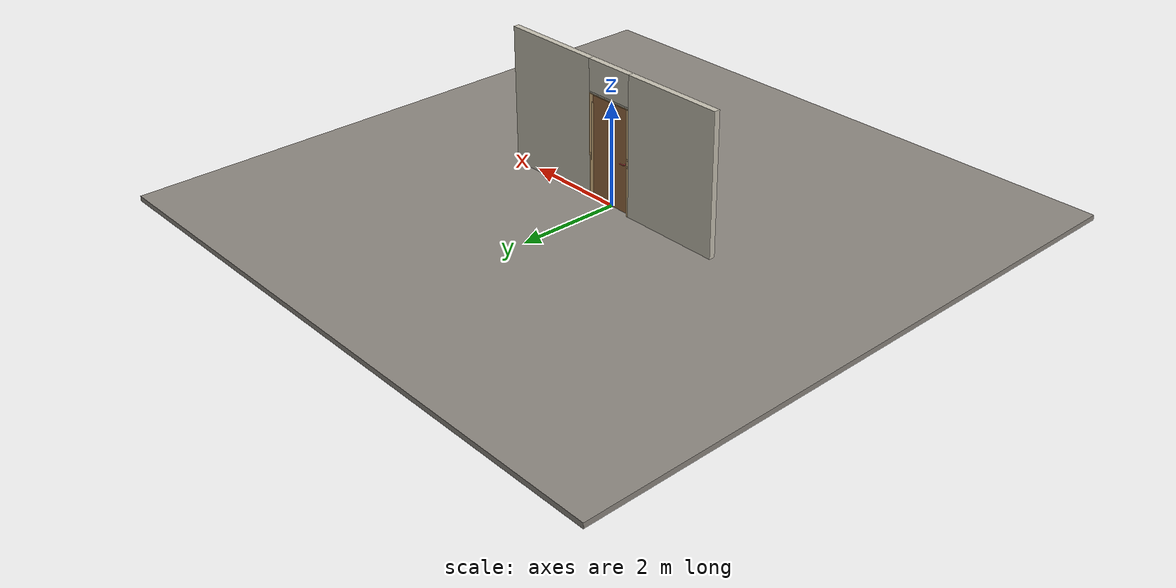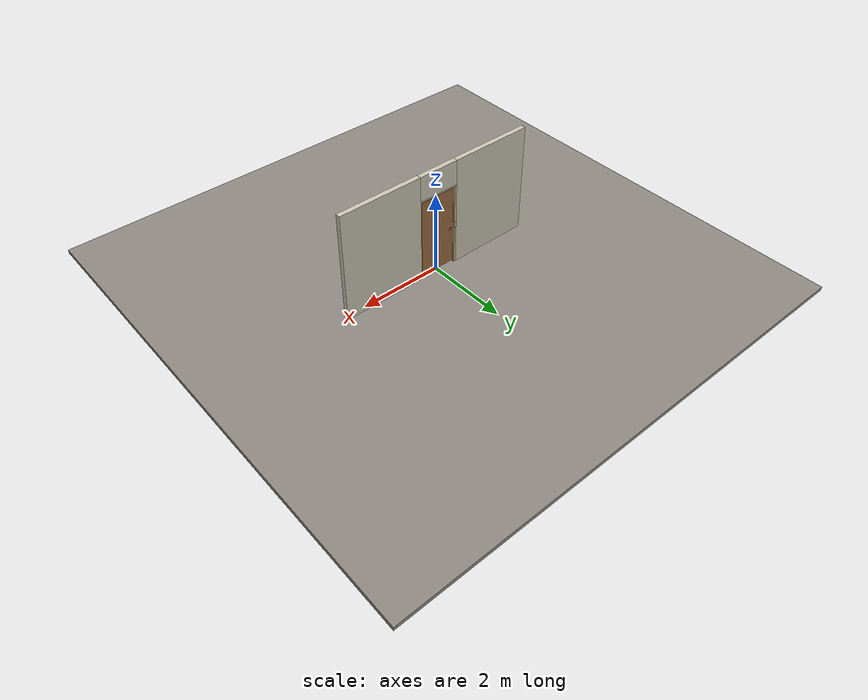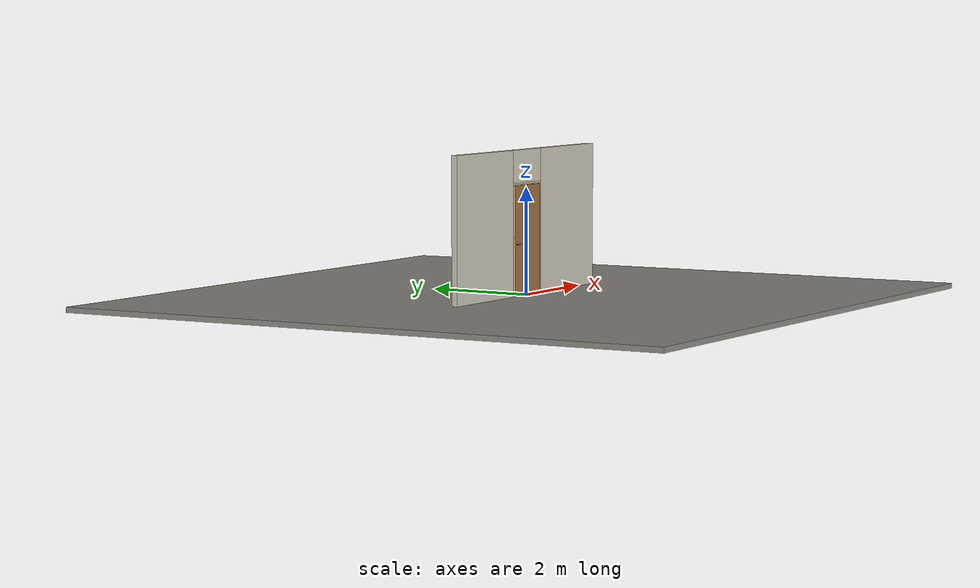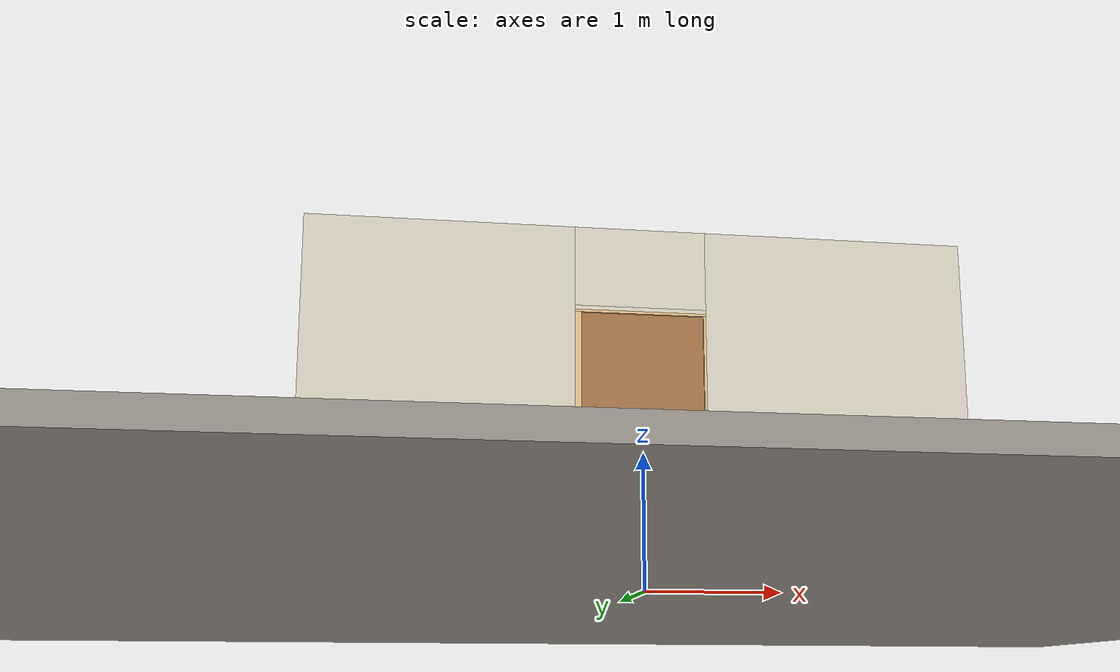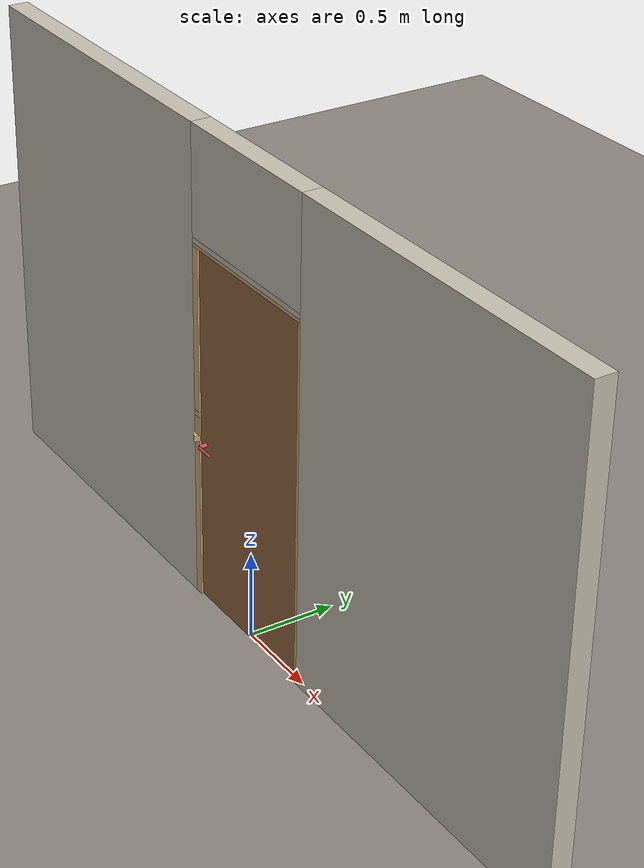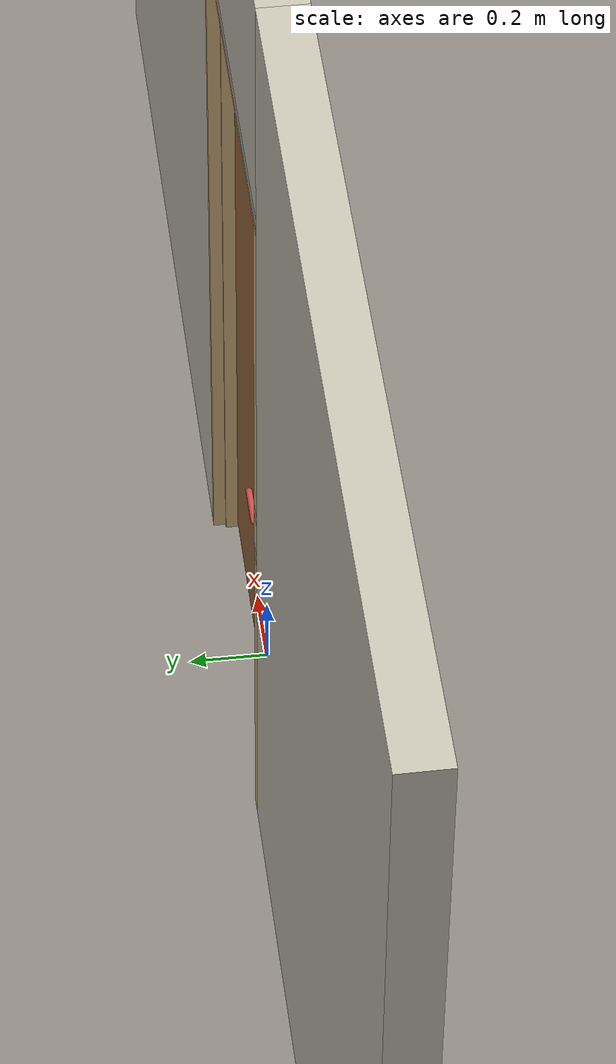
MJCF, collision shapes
<?xml version="1.0" ?>
<mujoco model="db0601_swing_single_minimal">
  <compiler angle="radian" meshdir="../../hardware" texturedir="../../textures" autolimits="true" inertiafromgeom="false"/>
  <option timestep="0.002" integrator="implicitfast" cone="elliptic" impratio="10" noslip_iterations="3">
    <flag multiccd="enable"/>
  </option>
  <size memory="16M"/>
  <default>
    <geom condim="4" solref="0.005 1" solimp="0.95 0.99 0.001"/>
    <joint solreflimit="0.005 1" solimplimit="0.95 0.99 0.001"/>
    <tendon solreflimit="0.005 1"/>
    <equality solref="0.002 1"/>
  </default>
  <visual>
    <headlight ambient="0.4 0.4 0.4" diffuse="0.7 0.7 0.7" specular="0.2 0.2 0.2"/>
    <quality shadowsize="4096"/>
    <map znear="0.01" zfar="60"/>
  </visual>
  <asset>
    <mesh name="lever_a61139b160" file="lever_a61139b160.obj"/>
    <material name="mat_floor" rgba="0.55 0.53 0.5 1" specular="0.2" shininess="0.15" reflectance="0"/>
    <material name="mat_wall" rgba="0.78 0.76 0.7 1" specular="0.2" shininess="0.1" reflectance="0"/>
    <material name="mat_leaf" rgba="0.6 0.42 0.25 1" specular="0.2" shininess="0.6" reflectance="0"/>
    <material name="mat_leaf_panel" rgba="0.552 0.386 0.23 1" specular="0.2" shininess="0.6" reflectance="0"/>
    <material name="mat_hinge" rgba="0.65 0.66 0.68 1" specular="0.74" shininess="0.5" reflectance="0.36"/>
    <material name="mat_op_nickel_satin" rgba="0.72 0.7 0.66 1" specular="0.8" shininess="0.65" reflectance="0.4"/>
    <material name="mat_trim" rgba="0.85 0.66 0.3 1" specular="0.8" shininess="0.75" reflectance="0.4"/>
    <material name="mat_keypad" rgba="0.05 0.05 0.05 1" specular="0.38" shininess="0.3" reflectance="0.12"/>
    <material name="mat_key" rgba="0.85 0.85 0.82 1" specular="0.2" shininess="0.5" reflectance="0"/>
    <material name="mat_bolt" rgba="0.85 0.66 0.3 1" specular="0.8" shininess="0.75" reflectance="0.4"/>
    <material name="mat_deadbolt" rgba="0.85 0.66 0.3 1" specular="0.8" shininess="0.75" reflectance="0.4"/>
    <material name="mat_frame" rgba="0.82 0.7 0.5 1" specular="0.2" shininess="0.45" reflectance="0"/>
    <material name="mat_seal" rgba="0.1 0.1 0.1 1" specular="0.2" shininess="0.1" reflectance="0"/>
    <material name="mat_peephole" rgba="0.85 0.66 0.3 1" specular="0.8" shininess="0.75" reflectance="0.4"/>
    <material name="mat_stop" rgba="0.9 0.9 0.92 1" specular="0.8" shininess="0.9" reflectance="0.4"/>
    <texture name="skybox" type="skybox" builtin="gradient" rgb1="0.6 0.7 0.85" rgb2="0.9 0.92 0.95" width="256" height="256"/>
  </asset>
  <worldbody>
    <light name="sun" pos="1.5 -2.5 4" dir="-0.3 0.5 -0.8" directional="true" diffuse="0.8 0.8 0.8" specular="0.3 0.3 0.3" castshadow="true"/>
    <light name="fill" pos="-1.5 2.5 3" dir="0.3 -0.5 -0.7" directional="true" diffuse="0.35 0.35 0.4" castshadow="false"/>
    <camera name="robot_view" pos="0 -2.513687 1.734312" xyaxes="1 0 0 0 0.26963 0.962964" fovy="52"/>
    <camera name="far_view" pos="0 2.570688 1.734312" xyaxes="-1 0 0 0 -0.26963 0.962964" fovy="52"/>
    <camera name="iso" pos="-1.932062 -2.106937 2.141063" xyaxes="0.741536 -0.670913 0 0.242917 0.268487 0.932151" fovy="46"/>
    <camera name="detail_handle" pos="-0.1169 -0.877 1.245" xyaxes="0.97561 0.219512 0 -0.070934 0.315262 0.94635" fovy="38"/>
    <geom name="floor" type="box" size="6 6 0.05" pos="0 0 -0.05" material="mat_floor" group="0" contype="1" conaffinity="1" friction="0.8 0.005 0.0001" density="2400"/>
    <geom name="wall_left" type="box" size="0.99525 0.0575 1.35" pos="-1.50475 0.0285 1.35" material="mat_wall" group="0" contype="1" conaffinity="1" friction="0.6 0.005 0.0001" density="800"/>
    <geom name="wall_right" type="box" size="1.01025 0.0575 1.35" pos="1.48975 0.0285 1.35" material="mat_wall" group="0" contype="1" conaffinity="1" friction="0.6 0.005 0.0001" density="800"/>
    <geom name="wall_header" type="box" size="0.4945 0.0575 0.303" pos="-0.015 0.0285 2.397" material="mat_wall" group="0" contype="1" conaffinity="1" friction="0.6 0.005 0.0001" density="800"/>
    <geom name="jamb_hinge" type="box" size="0.0095 0.0575 1.0225" pos="0.47 0.0285 1.0225" material="mat_frame" group="0" contype="1" conaffinity="1" friction="0.6 0.005 0.0001" density="400"/>
    <geom name="strike_965_wall_n" type="box" size="0.0245 0.039075 0.0167" pos="-0.485 0.046925 0.965" material="mat_frame" group="0" contype="1" conaffinity="1" friction="0.6 0.005 0.0001" density="400"/>
    <geom name="strike_965_wall_p" type="box" size="0.0245 0.008 0.0167" pos="-0.485 -0.01585 0.965" material="mat_frame" group="0" contype="1" conaffinity="1" friction="0.6 0.005 0.0001" density="400"/>
    <geom name="strike_965_ramp" type="box" size="0.0245 0.01649 0.0167" pos="-0.489636 -0.028673 0.965" quat="0.977148 0 0 -0.212558" material="mat_frame" group="0" contype="1" conaffinity="1" friction="0.12 0.005 0.0001" density="400"/>
    <geom name="strike_965_back" type="box" size="0.01615 0.00785 0.0167" pos="-0.49335 0 0.965" material="mat_frame" group="0" contype="1" conaffinity="1" friction="0.6 0.005 0.0001" density="400"/>
    <geom name="strike_1105_wall_n" type="box" size="0.0245 0.03825 0.0155" pos="-0.485 0.04775 1.105" material="mat_frame" group="0" contype="1" conaffinity="1" friction="0.6 0.005 0.0001" density="400"/>
    <geom name="strike_1105_wall_p" type="box" size="0.0245 0.00975 0.0155" pos="-0.485 -0.01925 1.105" material="mat_frame" group="0" contype="1" conaffinity="1" friction="0.6 0.005 0.0001" density="400"/>
    <geom name="strike_1105_back" type="box" size="0.0098 0.0095 0.0155" pos="-0.4997 0 1.105" material="mat_frame" group="0" contype="1" conaffinity="1" friction="0.6 0.005 0.0001" density="400"/>
    <geom name="jamb_strike_0" type="box" size="0.0245 0.0575 0.47415" pos="-0.485 0.0285 0.47415" material="mat_frame" group="0" contype="1" conaffinity="1" friction="0.6 0.005 0.0001" density="400"/>
    <geom name="jamb_strike_1" type="box" size="0.0245 0.0575 0.0539" pos="-0.485 0.0285 1.0356" material="mat_frame" group="0" contype="1" conaffinity="1" friction="0.6 0.005 0.0001" density="400"/>
    <geom name="jamb_strike_2" type="box" size="0.0245 0.0575 0.46225" pos="-0.485 0.0285 1.58275" material="mat_frame" group="0" contype="1" conaffinity="1" friction="0.6 0.005 0.0001" density="400"/>
    <geom name="jamb_head" type="box" size="0.4945 0.0575 0.0095" pos="-0.015 0.0285 2.0545" material="mat_frame" group="0" contype="1" conaffinity="1" friction="0.6 0.005 0.0001" density="400"/>
    <geom name="head_stud" type="box" size="0.4945 0.0575 0.015" pos="-0.015 0.0285 2.079" material="mat_wall" group="0" contype="1" conaffinity="1" friction="0.6 0.005 0.0001" density="500"/>
    <geom name="stop_hinge" type="box" size="0.0055 0.016 1.0225" pos="0.455 0.0385 1.0225" material="mat_frame" group="0" contype="1" conaffinity="1" friction="0.6 0.005 0.0001" density="400"/>
    <geom name="stop_strike" type="box" size="0.0055 0.016 1.0225" pos="-0.455 0.0385 1.0225" material="mat_frame" group="0" contype="1" conaffinity="1" friction="0.6 0.005 0.0001" density="400"/>
    <geom name="stop_head" type="box" size="0.4605 0.016 0.0055" pos="0 0.0385 2.0395" material="mat_frame" group="0" contype="1" conaffinity="1" friction="0.6 0.005 0.0001" density="400"/>
    <site name="approach_point" pos="0 -1.5 0" quat="1 0 0 0" size="0.05" rgba="0.2 0.9 0.2 0.5" group="4"/>
    <site name="goal_point" pos="0 1.5 0" quat="1 0 0 0" size="0.05" rgba="0.2 0.9 0.2 0.5" group="4"/>
    <site name="door_plane_center" pos="0 0 1.0225" quat="1 0 0 0" size="0.02" rgba="0.2 0.9 0.2 0.5" group="4"/>
    <body name="leaf" pos="0.4605 0 0">
      <inertial pos="-0.46 0 1.025" mass="55.270219" quat="-0.5 0.5 0.5 0.5" diaginertia="3.856626896 19.02658855 22.865381589"/>
      <joint name="leaf_hinge" type="hinge" axis="0 0 1" pos="-0.003 -0.029 0" limited="true" range="0 1.658063" solreflimit="0.02 1" damping="0.30611" frictionloss="6.791938" armature="0.02"/>
      <geom name="leaf_slab" type="box" size="0.457 0.022 1.016" pos="-0.46 0 1.025" material="mat_leaf" group="0" contype="1" conaffinity="1" friction="0.3 0.005 0.0001" density="1"/>
      <site name="leaf_edge_mid" pos="-0.917 0 1.016" quat="1 0 0 0" size="0.02" rgba="0.2 0.9 0.2 0.5" group="4"/>
      <body name="leaf_handle" pos="-0.847 0 0.965">
        <inertial pos="0.025007 0 0" mass="0.82" quat="0.707107 0 0 -0.707107" diaginertia="0.001198839 0.003239028 0.004272715"/>
        <joint name="leaf_handle_hinge" type="hinge" axis="0 1 0" limited="true" range="0 0.87" damping="0.216449" frictionloss="0.043602" stiffness="1" springref="-0.375569" armature="0.01"/>
        <geom name="leaf_handle_lever_n" type="mesh" mesh="lever_a61139b160" pos="0 -0.022 0" quat="0 0 -0.707107 0.707107" material="mat_op_nickel_satin" group="1" contype="0" conaffinity="0" density="3000"/>
        <geom name="leaf_handle_lever_col_n" type="capsule" size="0.008 0.048" pos="0.056 -0.077 0" quat="0.707107 0 0.707107 0" material="mat_op_nickel_satin" group="3" contype="1" conaffinity="1" rgba="0.8 0.3 0.3 0.25" friction="0.7 0.01 0.0001" density="3000"/>
        <geom name="leaf_handle_hub_col_n" type="cylinder" size="0.012 0.022" pos="0 -0.052 0" quat="0.707107 -0.707107 0 0" material="mat_op_nickel_satin" group="3" contype="1" conaffinity="1" rgba="0.8 0.3 0.3 0.25" friction="0.6 0.005 0.0001" density="3000"/>
        <geom name="leaf_handle_lever_p" type="mesh" mesh="lever_a61139b160" pos="0 0.022 0" quat="0 0 0.707107 0.707107" material="mat_op_nickel_satin" group="1" contype="0" conaffinity="0" density="3000"/>
        <geom name="leaf_handle_lever_col_p" type="capsule" size="0.008 0.048" pos="0.056 0.077 0" quat="0.707107 0 0.707107 0" material="mat_op_nickel_satin" group="3" contype="1" conaffinity="1" rgba="0.8 0.3 0.3 0.25" friction="0.7 0.01 0.0001" density="3000"/>
        <geom name="leaf_handle_hub_col_p" type="cylinder" size="0.012 0.022" pos="0 0.052 0" quat="0.707107 -0.707107 0 0" material="mat_op_nickel_satin" group="3" contype="1" conaffinity="1" rgba="0.8 0.3 0.3 0.25" friction="0.6 0.005 0.0001" density="3000"/>
        <site name="leaf_handle_grip_n" pos="0.0896 -0.077 0" quat="1 0 0 0" size="0.012" rgba="0.2 0.9 0.2 0.5" group="4"/>
        <site name="leaf_handle_grip_p" pos="0.0896 0.077 0" quat="1 0 0 0" size="0.012" rgba="0.2 0.9 0.2 0.5" group="4"/>
      </body>
      <body name="leaf_latch_bolt" pos="-0.917 0 0.965">
        <inertial pos="0.00865 0 0" mass="0.041419" quat="0.92388 0.382683 0 0" diaginertia="0.000000798 0.000005598 0.000005598"/>
        <joint name="leaf_latch_bolt_slide" type="slide" axis="1 0 0" limited="true" range="0 0.0127" damping="2" frictionloss="0.3" stiffness="300" springref="-0.008333" armature="0.1"/>
        <geom name="leaf_latch_bolt_capsule" type="capsule" size="0.00635 0.015" pos="0.00865 0 0" quat="0.707107 0 -0.707107 0" material="mat_bolt" group="0" contype="1" conaffinity="1" friction="0.2 0.005 0.0001" density="8500"/>
      </body>
    </body>
  </worldbody>
  <tendon>
    <fixed name="leaf_latch_bolt_coupling" limited="true" range="0 10">
      <joint joint="leaf_latch_bolt_slide" coef="1"/>
      <joint joint="leaf_handle_hinge" coef="-0.015679"/>
    </fixed>
  </tendon>
  <sensor>
    <jointpos name="leaf_hinge_pos" joint="leaf_hinge"/>
    <jointvel name="leaf_hinge_vel" joint="leaf_hinge"/>
    <jointpos name="leaf_handle_hinge_pos" joint="leaf_handle_hinge"/>
    <jointvel name="leaf_handle_hinge_vel" joint="leaf_handle_hinge"/>
    <jointpos name="leaf_latch_bolt_slide_pos" joint="leaf_latch_bolt_slide"/>
    <jointvel name="leaf_latch_bolt_slide_vel" joint="leaf_latch_bolt_slide"/>
  </sensor>
</mujoco>
